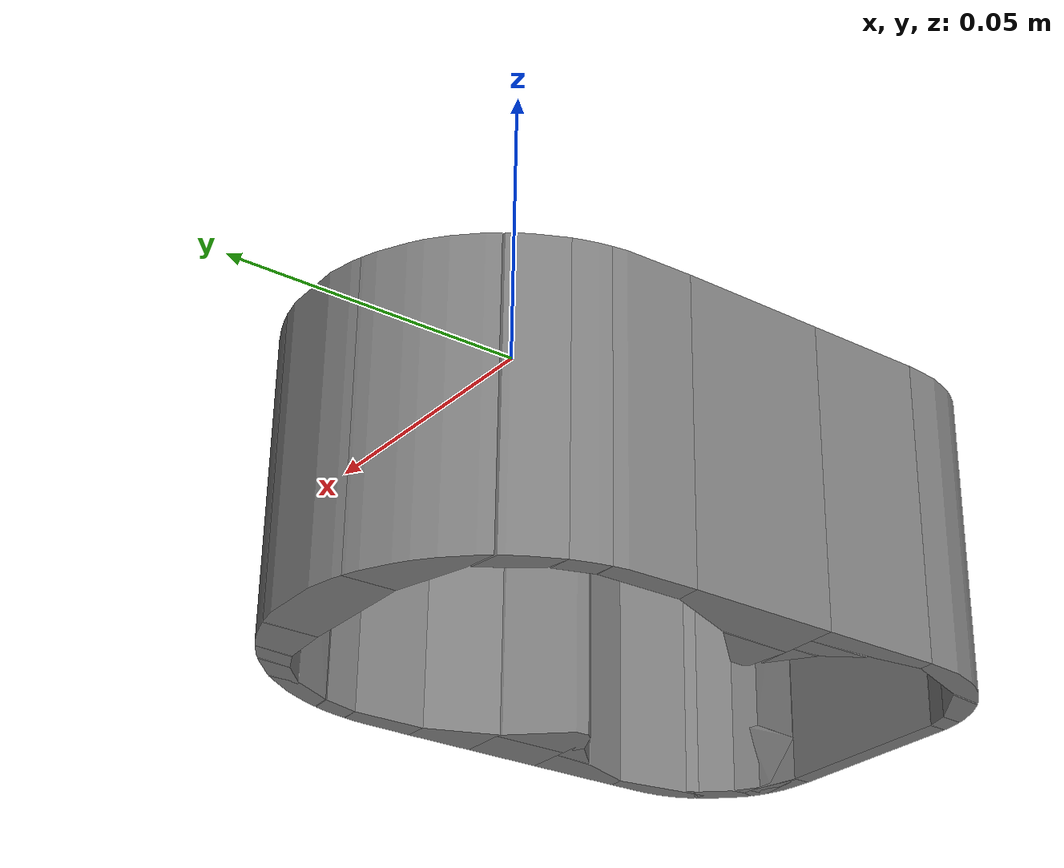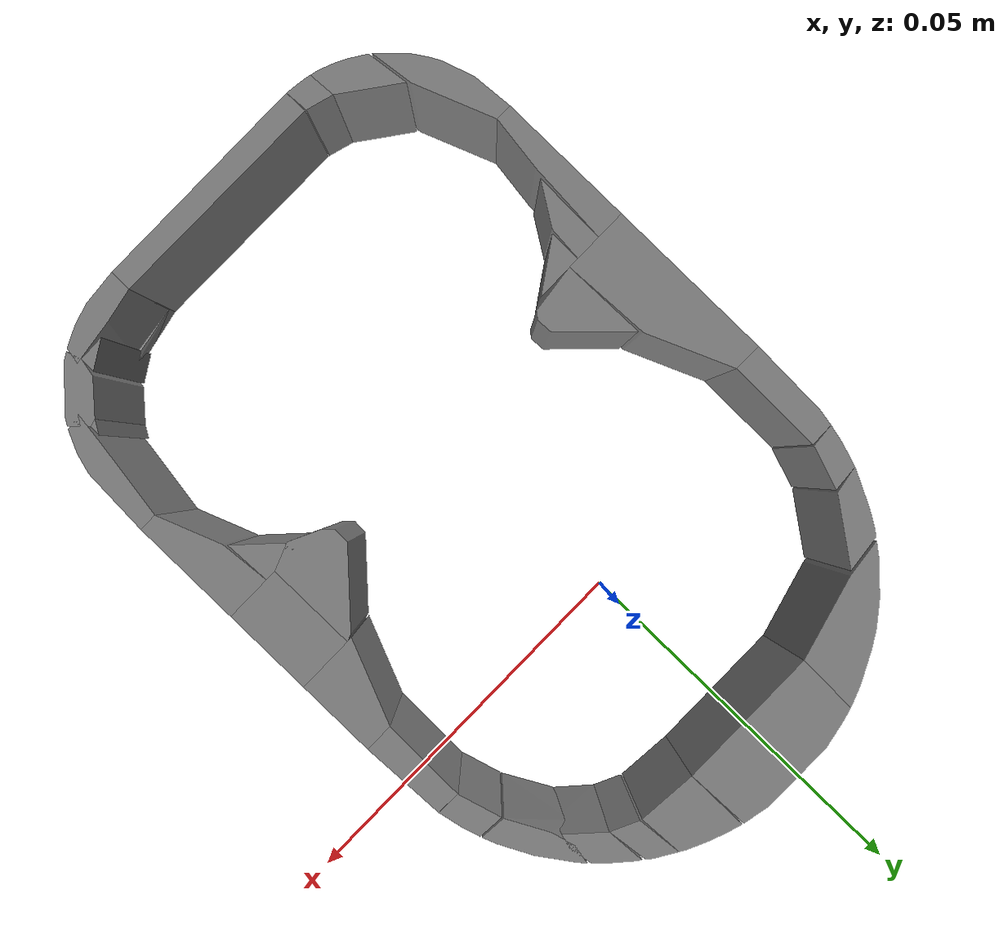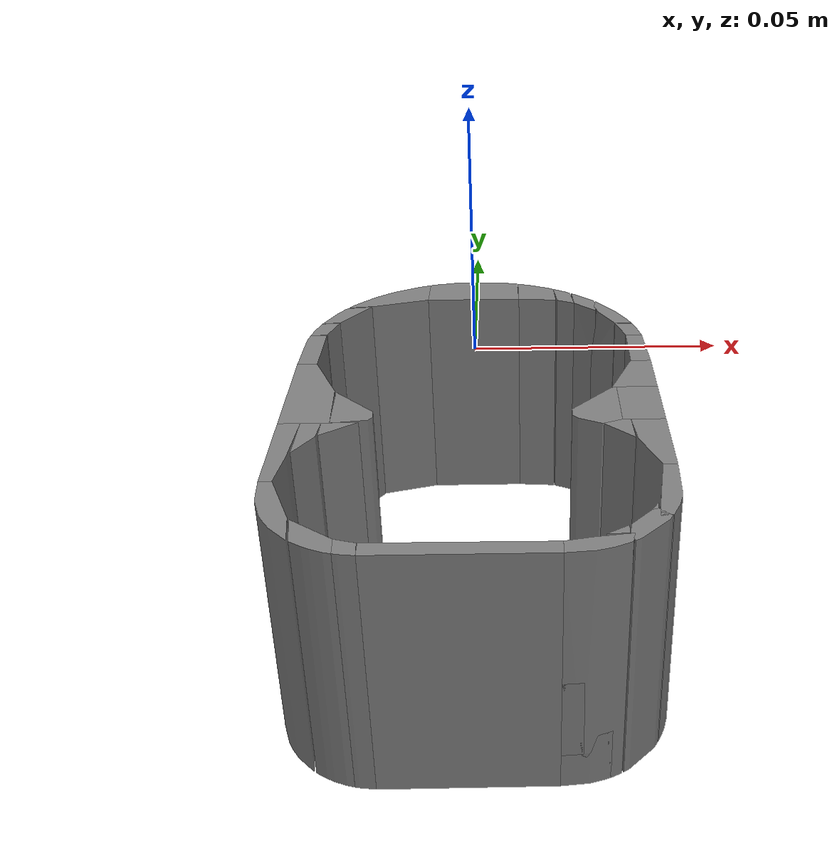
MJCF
<mujoco model="socket_col_outter">
  <default>
    <default class="visual">
      <geom group="1" type="mesh" contype="0" conaffinity="0"/>
    </default>
    <default class="collision">
      <geom group="0" type="mesh"/>
    </default>
  </default>
  <asset>
    <mesh name = "socket_col_outter_collision_0" file="socket_col_outter_collision_0.obj"/>
    <mesh name = "socket_col_outter_collision_1" file="socket_col_outter_collision_1.obj"/>
    <mesh name = "socket_col_outter_collision_2" file="socket_col_outter_collision_2.obj"/>
    <mesh name = "socket_col_outter_collision_3" file="socket_col_outter_collision_3.obj"/>
    <mesh name = "socket_col_outter_collision_4" file="socket_col_outter_collision_4.obj"/>
    <mesh name = "socket_col_outter_collision_5" file="socket_col_outter_collision_5.obj"/>
    <mesh name = "socket_col_outter_collision_6" file="socket_col_outter_collision_6.obj"/>
    <mesh name = "socket_col_outter_collision_7" file="socket_col_outter_collision_7.obj"/>
    <mesh name = "socket_col_outter_collision_8" file="socket_col_outter_collision_8.obj"/>
    <mesh name = "socket_col_outter_collision_9" file="socket_col_outter_collision_9.obj"/>
    <mesh name = "socket_col_outter_collision_10" file="socket_col_outter_collision_10.obj"/>
    <mesh name = "socket_col_outter_collision_11" file="socket_col_outter_collision_11.obj"/>
    <mesh name = "socket_col_outter_collision_12" file="socket_col_outter_collision_12.obj"/>
    <mesh name = "socket_col_outter_collision_13" file="socket_col_outter_collision_13.obj"/>
    <mesh name = "socket_col_outter_collision_14" file="socket_col_outter_collision_14.obj"/>
    <mesh name = "socket_col_outter_collision_15" file="socket_col_outter_collision_15.obj"/>
    <mesh name = "socket_col_outter_collision_16" file="socket_col_outter_collision_16.obj"/>
    <mesh name = "socket_col_outter_collision_17" file="socket_col_outter_collision_17.obj"/>
    <mesh name = "socket_col_outter_collision_18" file="socket_col_outter_collision_18.obj"/>
    <mesh name = "socket_col_outter_collision_19" file="socket_col_outter_collision_19.obj"/>
    <mesh name = "socket_col_outter_collision_20" file="socket_col_outter_collision_20.obj"/>
    <mesh name = "socket_col_outter_collision_21" file="socket_col_outter_collision_21.obj"/>
    <mesh name = "socket_col_outter_collision_22" file="socket_col_outter_collision_22.obj"/>
    <mesh name = "socket_col_outter_collision_23" file="socket_col_outter_collision_23.obj"/>
    <mesh name = "socket_col_outter_collision_24" file="socket_col_outter_collision_24.obj"/>
    <mesh name = "socket_col_outter_collision_25" file="socket_col_outter_collision_25.obj"/>
    <mesh name = "socket_col_outter_collision_26" file="socket_col_outter_collision_26.obj"/>
    <mesh name = "socket_col_outter_collision_27" file="socket_col_outter_collision_27.obj"/>
    <mesh name = "socket_col_outter_collision_28" file="socket_col_outter_collision_28.obj"/>
    <mesh name = "socket_col_outter_collision_29" file="socket_col_outter_collision_29.obj"/>
    <mesh name = "socket_col_outter_collision_30" file="socket_col_outter_collision_30.obj"/>
    <mesh name = "socket_col_outter_collision_31" file="socket_col_outter_collision_31.obj"/>
  </asset>
  <worldbody>
    <body name="collision">
      <geom mesh="socket_col_outter_collision_0" class="collision"/>
      <geom mesh="socket_col_outter_collision_1" class="collision"/>
      <geom mesh="socket_col_outter_collision_2" class="collision"/>
      <geom mesh="socket_col_outter_collision_3" class="collision"/>
      <geom mesh="socket_col_outter_collision_4" class="collision"/>
      <geom mesh="socket_col_outter_collision_5" class="collision"/>
      <geom mesh="socket_col_outter_collision_6" class="collision"/>
      <geom mesh="socket_col_outter_collision_7" class="collision"/>
      <geom mesh="socket_col_outter_collision_8" class="collision"/>
      <geom mesh="socket_col_outter_collision_9" class="collision"/>
      <geom mesh="socket_col_outter_collision_10" class="collision"/>
      <geom mesh="socket_col_outter_collision_11" class="collision"/>
      <geom mesh="socket_col_outter_collision_12" class="collision"/>
      <geom mesh="socket_col_outter_collision_13" class="collision"/>
      <geom mesh="socket_col_outter_collision_14" class="collision"/>
      <geom mesh="socket_col_outter_collision_15" class="collision"/>
      <geom mesh="socket_col_outter_collision_16" class="collision"/>
      <geom mesh="socket_col_outter_collision_17" class="collision"/>
      <geom mesh="socket_col_outter_collision_18" class="collision"/>
      <geom mesh="socket_col_outter_collision_19" class="collision"/>
      <geom mesh="socket_col_outter_collision_20" class="collision"/>
      <geom mesh="socket_col_outter_collision_21" class="collision"/>
      <geom mesh="socket_col_outter_collision_22" class="collision"/>
      <geom mesh="socket_col_outter_collision_23" class="collision"/>
      <geom mesh="socket_col_outter_collision_24" class="collision"/>
      <geom mesh="socket_col_outter_collision_25" class="collision"/>
      <geom mesh="socket_col_outter_collision_26" class="collision"/>
      <geom mesh="socket_col_outter_collision_27" class="collision"/>
      <geom mesh="socket_col_outter_collision_28" class="collision"/>
      <geom mesh="socket_col_outter_collision_29" class="collision"/>
      <geom mesh="socket_col_outter_collision_30" class="collision"/>
      <geom mesh="socket_col_outter_collision_31" class="collision"/>
    </body>
  </worldbody>
</mujoco>
